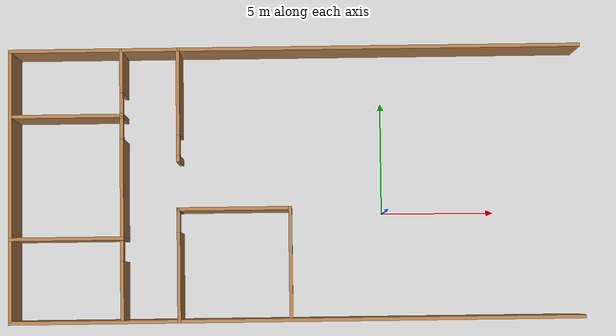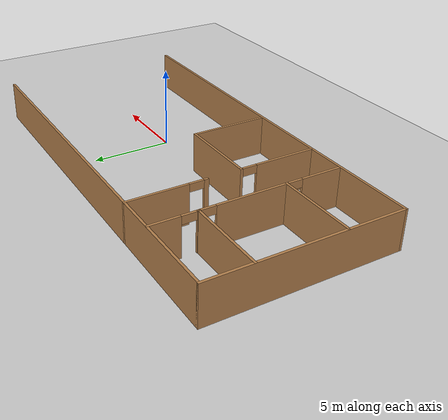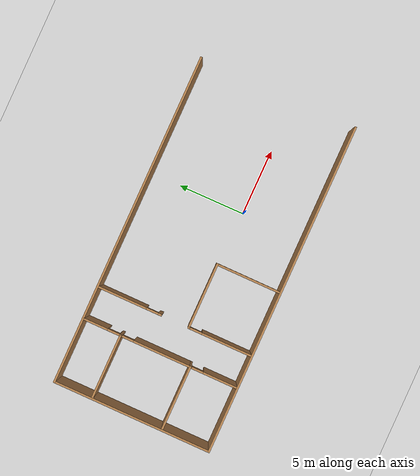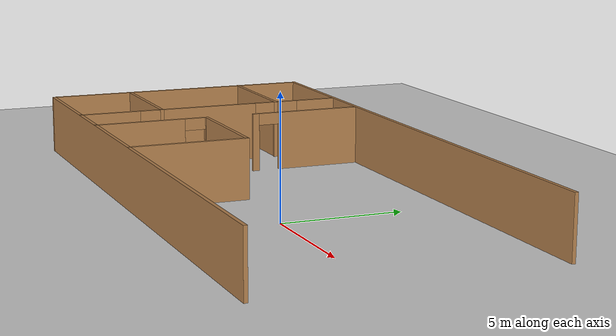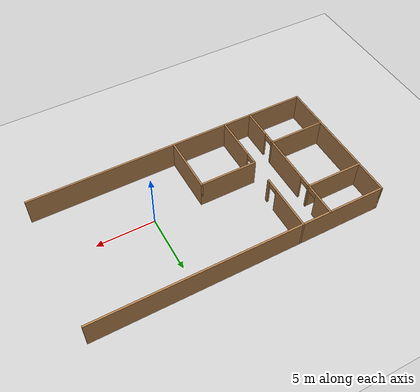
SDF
<sdf version="1.6">
 <world name="default">
  <model name="ground_plane">
   <static>1</static>
   <link name="link">
    <collision name="collision">
     <geometry><plane><normal>0 0 1</normal><size>100 100</size></plane></geometry>
     <surface>
      <contact><collide_bitmask>65535</collide_bitmask></contact>
      <friction><ode><mu>100</mu><mu2>50</mu2></ode></friction>
     </surface>
    </collision>
    <visual name="visual">
     <cast_shadows>0</cast_shadows>
     <geometry><plane><normal>0 0 1</normal><size>100 100</size></plane></geometry>
     <material>
      <script><uri>file://media/materials/scripts/gazebo.material</uri><name>Gazebo/Grey</name></script>
     </material>
    </visual>
   </link>
  </model>
  <model name="Building">
   <link name="Wall_19">
    <pose>0 5.9295 0 0 -0 0</pose>
    <visual name="Wall_19_Visual">
     <pose>0 0 1.25 0 -0 0</pose>
     <geometry><box><size>25 0.15 2.5</size></box></geometry>
     <material>
      <script><uri>file://media/materials/scripts/gazebo.material</uri><name>Gazebo/Wood</name></script>
      <ambient>1 1 1 1</ambient>
      <shader type="pixel"/>
      <diffuse>1 1 1 1</diffuse>
      <specular>0.2 0.2 0.2 1</specular>
      <emissive>0 0 0 1</emissive>
     </material>
     <meta><layer>0</layer></meta>
    </visual>
    <collision name="Wall_19_Collision">
     <pose>0 0 1.25 0 -0 0</pose>
     <geometry><box><size>25 0.15 2.5</size></box></geometry>
     <surface>
      <friction>
       <ode><mu>1</mu><mu2>1</mu2><fdir1>0 0 0</fdir1><slip1>0</slip1><slip2>0</slip2></ode>
       <torsional>
        <coefficient>1</coefficient>
        <patch_radius>0</patch_radius>
        <surface_radius>0</surface_radius>
        <use_patch_radius>1</use_patch_radius>
        <ode><slip>0</slip></ode>
       </torsional>
      </friction>
      <bounce><restitution_coefficient>0</restitution_coefficient><threshold>1e+06</threshold></bounce>
      <contact>
       <collide_without_contact>0</collide_without_contact>
       <collide_without_contact_bitmask>1</collide_without_contact_bitmask>
       <collide_bitmask>1</collide_bitmask>
       <ode>
        <soft_cfm>0</soft_cfm>
        <soft_erp>0.2</soft_erp>
        <kp>1e+13</kp>
        <kd>1</kd>
        <max_vel>0.01</max_vel>
        <min_depth>0</min_depth>
       </ode>
       <bullet>
        <split_impulse>1</split_impulse>
        <split_impulse_penetration_threshold>-0.01</split_impulse_penetration_threshold>
        <soft_cfm>0</soft_cfm>
        <soft_erp>0.2</soft_erp>
        <kp>1e+13</kp>
        <kd>1</kd>
       </bullet>
      </contact>
     </surface>
    </collision>
   </link>
   <link name="Wall_21">
    <pose>0 -5.9205 0 0 -0 3.14159</pose>
    <visual name="Wall_21_Visual">
     <pose>0 0 1.25 0 -0 0</pose>
     <geometry><box><size>25 0.15 2.5</size></box></geometry>
     <material>
      <script><uri>file://media/materials/scripts/gazebo.material</uri><name>Gazebo/Wood</name></script>
      <ambient>1 1 1 1</ambient>
      <shader type="pixel"/>
      <diffuse>1 1 1 1</diffuse>
      <specular>0.2 0.2 0.2 1</specular>
      <emissive>0 0 0 1</emissive>
     </material>
     <meta><layer>0</layer></meta>
    </visual>
    <collision name="Wall_21_Collision">
     <pose>0 0 1.25 0 -0 0</pose>
     <geometry><box><size>25 0.15 2.5</size></box></geometry>
     <surface>
      <friction>
       <ode><mu>1</mu><mu2>1</mu2><fdir1>0 0 0</fdir1><slip1>0</slip1><slip2>0</slip2></ode>
       <torsional>
        <coefficient>1</coefficient>
        <patch_radius>0</patch_radius>
        <surface_radius>0</surface_radius>
        <use_patch_radius>1</use_patch_radius>
        <ode><slip>0</slip></ode>
       </torsional>
      </friction>
      <bounce><restitution_coefficient>0</restitution_coefficient><threshold>1e+06</threshold></bounce>
      <contact>
       <collide_without_contact>0</collide_without_contact>
       <collide_without_contact_bitmask>1</collide_without_contact_bitmask>
       <collide_bitmask>1</collide_bitmask>
       <ode>
        <soft_cfm>0</soft_cfm>
        <soft_erp>0.2</soft_erp>
        <kp>1e+13</kp>
        <kd>1</kd>
        <max_vel>0.01</max_vel>
        <min_depth>0</min_depth>
       </ode>
       <bullet>
        <split_impulse>1</split_impulse>
        <split_impulse_penetration_threshold>-0.01</split_impulse_penetration_threshold>
        <soft_cfm>0</soft_cfm>
        <soft_erp>0.2</soft_erp>
        <kp>1e+13</kp>
        <kd>1</kd>
       </bullet>
      </contact>
     </surface>
    </collision>
   </link>
   <link name="Wall_22">
    <pose>-12.425 0.0045 0 0 -0 1.5708</pose>
    <visual name="Wall_22_Visual">
     <pose>0 0 1.25 0 -0 0</pose>
     <geometry><box><size>12 0.15 2.5</size></box></geometry>
     <material>
      <script><uri>file://media/materials/scripts/gazebo.material</uri><name>Gazebo/Wood</name></script>
      <ambient>1 1 1 1</ambient>
      <shader type="pixel"/>
      <diffuse>1 1 1 1</diffuse>
      <specular>0.2 0.2 0.2 1</specular>
      <emissive>0 0 0 1</emissive>
     </material>
     <meta><layer>0</layer></meta>
    </visual>
    <collision name="Wall_22_Collision">
     <pose>0 0 1.25 0 -0 0</pose>
     <geometry><box><size>12 0.15 2.5</size></box></geometry>
     <surface>
      <friction>
       <ode><mu>1</mu><mu2>1</mu2><fdir1>0 0 0</fdir1><slip1>0</slip1><slip2>0</slip2></ode>
       <torsional>
        <coefficient>1</coefficient>
        <patch_radius>0</patch_radius>
        <surface_radius>0</surface_radius>
        <use_patch_radius>1</use_patch_radius>
        <ode><slip>0</slip></ode>
       </torsional>
      </friction>
      <bounce><restitution_coefficient>0</restitution_coefficient><threshold>1e+06</threshold></bounce>
      <contact>
       <collide_without_contact>0</collide_without_contact>
       <collide_without_contact_bitmask>1</collide_without_contact_bitmask>
       <collide_bitmask>1</collide_bitmask>
       <ode>
        <soft_cfm>0</soft_cfm>
        <soft_erp>0.2</soft_erp>
        <kp>1e+13</kp>
        <kd>1</kd>
        <max_vel>0.01</max_vel>
        <min_depth>0</min_depth>
       </ode>
       <bullet>
        <split_impulse>1</split_impulse>
        <split_impulse_penetration_threshold>-0.01</split_impulse_penetration_threshold>
        <soft_cfm>0</soft_cfm>
        <soft_erp>0.2</soft_erp>
        <kp>1e+13</kp>
        <kd>1</kd>
       </bullet>
      </contact>
     </surface>
    </collision>
   </link>
   <link name="Wall_46">
    <pose>-9.99667 3.05607 0 0 -0 3.14159</pose>
    <visual name="Wall_46_Visual">
     <pose>0 0 1.25 0 -0 0</pose>
     <geometry><box><size>5 0.15 2.5</size></box></geometry>
     <material>
      <script><uri>file://media/materials/scripts/gazebo.material</uri><name>Gazebo/Wood</name></script>
      <ambient>1 1 1 1</ambient>
      <shader type="pixel"/>
      <diffuse>1 1 1 1</diffuse>
      <specular>0.2 0.2 0.2 1</specular>
      <emissive>0 0 0 1</emissive>
     </material>
     <meta><layer>0</layer></meta>
    </visual>
    <collision name="Wall_46_Collision">
     <pose>0 0 1.25 0 -0 0</pose>
     <geometry><box><size>5 0.15 2.5</size></box></geometry>
     <surface>
      <friction>
       <ode><mu>1</mu><mu2>1</mu2><fdir1>0 0 0</fdir1><slip1>0</slip1><slip2>0</slip2></ode>
       <torsional>
        <coefficient>1</coefficient>
        <patch_radius>0</patch_radius>
        <surface_radius>0</surface_radius>
        <use_patch_radius>1</use_patch_radius>
        <ode><slip>0</slip></ode>
       </torsional>
      </friction>
      <bounce><restitution_coefficient>0</restitution_coefficient><threshold>1e+06</threshold></bounce>
      <contact>
       <collide_without_contact>0</collide_without_contact>
       <collide_without_contact_bitmask>1</collide_without_contact_bitmask>
       <collide_bitmask>1</collide_bitmask>
       <ode>
        <soft_cfm>0</soft_cfm>
        <soft_erp>0.2</soft_erp>
        <kp>1e+13</kp>
        <kd>1</kd>
        <max_vel>0.01</max_vel>
        <min_depth>0</min_depth>
       </ode>
       <bullet>
        <split_impulse>1</split_impulse>
        <split_impulse_penetration_threshold>-0.01</split_impulse_penetration_threshold>
        <soft_cfm>0</soft_cfm>
        <soft_erp>0.2</soft_erp>
        <kp>1e+13</kp>
        <kd>1</kd>
       </bullet>
      </contact>
     </surface>
    </collision>
   </link>
   <link name="Wall_48">
    <pose>-7.57167 4.48107 0 0 -0 1.5708</pose>
    <visual name="Wall_48_Visual_2">
     <pose>-0.874567 0 2.25 0 -0 0</pose>
     <geometry><box><size>0.9 0.15 0.5</size></box></geometry>
     <material>
      <script><uri>file://media/materials/scripts/gazebo.material</uri><name>Gazebo/Wood</name></script>
      <ambient>1 1 1 1</ambient>
      <shader type="pixel"/>
      <diffuse>1 1 1 1</diffuse>
      <specular>0.2 0.2 0.2 1</specular>
      <emissive>0 0 0 1</emissive>
     </material>
     <meta><layer>0</layer></meta>
    </visual>
    <visual name="Wall_48_Visual_1">
     <pose>0.537716 0 1.25 0 -0 0</pose>
     <geometry><box><size>1.92457 0.15 2.5</size></box></geometry>
     <material>
      <script><uri>file://media/materials/scripts/gazebo.material</uri><name>Gazebo/Wood</name></script>
      <ambient>1 1 1 1</ambient>
      <shader type="pixel"/>
      <diffuse>1 1 1 1</diffuse>
      <specular>0.2 0.2 0.2 1</specular>
      <emissive>0 0 0 1</emissive>
     </material>
     <meta><layer>0</layer></meta>
    </visual>
    <visual name="Wall_48_Visual_0">
     <pose>-1.41228 0 1.25 0 -0 0</pose>
     <geometry><box><size>0.175433 0.15 2.5</size></box></geometry>
     <material>
      <script><uri>file://media/materials/scripts/gazebo.material</uri><name>Gazebo/Wood</name></script>
      <ambient>1 1 1 1</ambient>
      <shader type="pixel"/>
      <diffuse>1 1 1 1</diffuse>
      <specular>0.2 0.2 0.2 1</specular>
      <emissive>0 0 0 1</emissive>
     </material>
     <meta><layer>0</layer></meta>
    </visual>
    <collision name="Wall_48_Collision_2">
     <pose>-0.874567 0 2.25 0 -0 0</pose>
     <geometry><box><size>0.9 0.15 0.5</size></box></geometry>
     <surface>
      <friction>
       <ode><mu>1</mu><mu2>1</mu2><fdir1>0 0 0</fdir1><slip1>0</slip1><slip2>0</slip2></ode>
       <torsional>
        <coefficient>1</coefficient>
        <patch_radius>0</patch_radius>
        <surface_radius>0</surface_radius>
        <use_patch_radius>1</use_patch_radius>
        <ode><slip>0</slip></ode>
       </torsional>
      </friction>
      <bounce><restitution_coefficient>0</restitution_coefficient><threshold>1e+06</threshold></bounce>
      <contact>
       <collide_without_contact>0</collide_without_contact>
       <collide_without_contact_bitmask>1</collide_without_contact_bitmask>
       <collide_bitmask>1</collide_bitmask>
       <ode>
        <soft_cfm>0</soft_cfm>
        <soft_erp>0.2</soft_erp>
        <kp>1e+13</kp>
        <kd>1</kd>
        <max_vel>0.01</max_vel>
        <min_depth>0</min_depth>
       </ode>
       <bullet>
        <split_impulse>1</split_impulse>
        <split_impulse_penetration_threshold>-0.01</split_impulse_penetration_threshold>
        <soft_cfm>0</soft_cfm>
        <soft_erp>0.2</soft_erp>
        <kp>1e+13</kp>
        <kd>1</kd>
       </bullet>
      </contact>
     </surface>
    </collision>
    <collision name="Wall_48_Collision_1">
     <pose>0.537716 0 1.25 0 -0 0</pose>
     <geometry><box><size>1.92457 0.15 2.5</size></box></geometry>
     <surface>
      <friction>
       <ode><mu>1</mu><mu2>1</mu2><fdir1>0 0 0</fdir1><slip1>0</slip1><slip2>0</slip2></ode>
       <torsional>
        <coefficient>1</coefficient>
        <patch_radius>0</patch_radius>
        <surface_radius>0</surface_radius>
        <use_patch_radius>1</use_patch_radius>
        <ode><slip>0</slip></ode>
       </torsional>
      </friction>
      <bounce><restitution_coefficient>0</restitution_coefficient><threshold>1e+06</threshold></bounce>
      <contact>
       <collide_without_contact>0</collide_without_contact>
       <collide_without_contact_bitmask>1</collide_without_contact_bitmask>
       <collide_bitmask>1</collide_bitmask>
       <ode>
        <soft_cfm>0</soft_cfm>
        <soft_erp>0.2</soft_erp>
        <kp>1e+13</kp>
        <kd>1</kd>
        <max_vel>0.01</max_vel>
        <min_depth>0</min_depth>
       </ode>
       <bullet>
        <split_impulse>1</split_impulse>
        <split_impulse_penetration_threshold>-0.01</split_impulse_penetration_threshold>
        <soft_cfm>0</soft_cfm>
        <soft_erp>0.2</soft_erp>
        <kp>1e+13</kp>
        <kd>1</kd>
       </bullet>
      </contact>
     </surface>
    </collision>
    <collision name="Wall_48_Collision_0">
     <pose>-1.41228 0 1.25 0 -0 0</pose>
     <geometry><box><size>0.175433 0.15 2.5</size></box></geometry>
     <surface>
      <friction>
       <ode><mu>1</mu><mu2>1</mu2><fdir1>0 0 0</fdir1><slip1>0</slip1><slip2>0</slip2></ode>
       <torsional>
        <coefficient>1</coefficient>
        <patch_radius>0</patch_radius>
        <surface_radius>0</surface_radius>
        <use_patch_radius>1</use_patch_radius>
        <ode><slip>0</slip></ode>
       </torsional>
      </friction>
      <bounce><restitution_coefficient>0</restitution_coefficient><threshold>1e+06</threshold></bounce>
      <contact>
       <collide_without_contact>0</collide_without_contact>
       <collide_without_contact_bitmask>1</collide_without_contact_bitmask>
       <collide_bitmask>1</collide_bitmask>
       <ode>
        <soft_cfm>0</soft_cfm>
        <soft_erp>0.2</soft_erp>
        <kp>1e+13</kp>
        <kd>1</kd>
        <max_vel>0.01</max_vel>
        <min_depth>0</min_depth>
       </ode>
       <bullet>
        <split_impulse>1</split_impulse>
        <split_impulse_penetration_threshold>-0.01</split_impulse_penetration_threshold>
        <soft_cfm>0</soft_cfm>
        <soft_erp>0.2</soft_erp>
        <kp>1e+13</kp>
        <kd>1</kd>
       </bullet>
      </contact>
     </surface>
    </collision>
   </link>
   <link name="Wall_50">
    <pose>-9.99667 -2.29393 0 0 -0 0</pose>
    <visual name="Wall_50_Visual">
     <pose>0 0 1.25 0 -0 0</pose>
     <geometry><box><size>5 0.15 2.5</size></box></geometry>
     <material>
      <script><uri>file://media/materials/scripts/gazebo.material</uri><name>Gazebo/Wood</name></script>
      <ambient>1 1 1 1</ambient>
      <shader type="pixel"/>
      <diffuse>1 1 1 1</diffuse>
      <specular>0.2 0.2 0.2 1</specular>
      <emissive>0 0 0 1</emissive>
     </material>
     <meta><layer>0</layer></meta>
    </visual>
    <collision name="Wall_50_Collision">
     <pose>0 0 1.25 0 -0 0</pose>
     <geometry><box><size>5 0.15 2.5</size></box></geometry>
     <surface>
      <friction>
       <ode><mu>1</mu><mu2>1</mu2><fdir1>0 0 0</fdir1><slip1>0</slip1><slip2>0</slip2></ode>
       <torsional>
        <coefficient>1</coefficient>
        <patch_radius>0</patch_radius>
        <surface_radius>0</surface_radius>
        <use_patch_radius>1</use_patch_radius>
        <ode><slip>0</slip></ode>
       </torsional>
      </friction>
      <bounce><restitution_coefficient>0</restitution_coefficient><threshold>1e+06</threshold></bounce>
      <contact>
       <collide_without_contact>0</collide_without_contact>
       <collide_without_contact_bitmask>1</collide_without_contact_bitmask>
       <collide_bitmask>1</collide_bitmask>
       <ode>
        <soft_cfm>0</soft_cfm>
        <soft_erp>0.2</soft_erp>
        <kp>1e+13</kp>
        <kd>1</kd>
        <max_vel>0.01</max_vel>
        <min_depth>0</min_depth>
       </ode>
       <bullet>
        <split_impulse>1</split_impulse>
        <split_impulse_penetration_threshold>-0.01</split_impulse_penetration_threshold>
        <soft_cfm>0</soft_cfm>
        <soft_erp>0.2</soft_erp>
        <kp>1e+13</kp>
        <kd>1</kd>
       </bullet>
      </contact>
     </surface>
    </collision>
   </link>
   <link name="Wall_51">
    <pose>-7.57167 -4.09393 0 0 0 -1.5708</pose>
    <visual name="Wall_51_Visual_1">
     <pose>0.536564 0 1.25 0 -0 0</pose>
     <geometry><box><size>2.67687 0.15 2.5</size></box></geometry>
     <material>
      <script><uri>file://media/materials/scripts/gazebo.material</uri><name>Gazebo/Wood</name></script>
      <ambient>1 1 1 1</ambient>
      <shader type="pixel"/>
      <diffuse>1 1 1 1</diffuse>
      <specular>0.2 0.2 0.2 1</specular>
      <emissive>0 0 0 1</emissive>
     </material>
     <meta><layer>0</layer></meta>
    </visual>
    <visual name="Wall_51_Visual_0">
     <pose>-1.78844 0 1.25 0 -0 0</pose>
     <geometry><box><size>0.173129 0.15 2.5</size></box></geometry>
     <material>
      <script><uri>file://media/materials/scripts/gazebo.material</uri><name>Gazebo/Wood</name></script>
      <ambient>1 1 1 1</ambient>
      <shader type="pixel"/>
      <diffuse>1 1 1 1</diffuse>
      <specular>0.2 0.2 0.2 1</specular>
      <emissive>0 0 0 1</emissive>
     </material>
     <meta><layer>0</layer></meta>
    </visual>
    <visual name="Wall_51_Visual_2">
     <pose>-1.25187 0 2.25 0 -0 0</pose>
     <geometry><box><size>0.9 0.15 0.5</size></box></geometry>
     <material>
      <script><uri>file://media/materials/scripts/gazebo.material</uri><name>Gazebo/Wood</name></script>
      <ambient>1 1 1 1</ambient>
      <shader type="pixel"/>
      <diffuse>1 1 1 1</diffuse>
      <specular>0.2 0.2 0.2 1</specular>
      <emissive>0 0 0 1</emissive>
     </material>
     <meta><layer>0</layer></meta>
    </visual>
    <collision name="Wall_51_Collision_0">
     <pose>-1.78844 0 1.25 0 -0 0</pose>
     <geometry><box><size>0.173129 0.15 2.5</size></box></geometry>
     <surface>
      <friction>
       <ode><mu>1</mu><mu2>1</mu2><fdir1>0 0 0</fdir1><slip1>0</slip1><slip2>0</slip2></ode>
       <torsional>
        <coefficient>1</coefficient>
        <patch_radius>0</patch_radius>
        <surface_radius>0</surface_radius>
        <use_patch_radius>1</use_patch_radius>
        <ode><slip>0</slip></ode>
       </torsional>
      </friction>
      <bounce><restitution_coefficient>0</restitution_coefficient><threshold>1e+06</threshold></bounce>
      <contact>
       <collide_without_contact>0</collide_without_contact>
       <collide_without_contact_bitmask>1</collide_without_contact_bitmask>
       <collide_bitmask>1</collide_bitmask>
       <ode>
        <soft_cfm>0</soft_cfm>
        <soft_erp>0.2</soft_erp>
        <kp>1e+13</kp>
        <kd>1</kd>
        <max_vel>0.01</max_vel>
        <min_depth>0</min_depth>
       </ode>
       <bullet>
        <split_impulse>1</split_impulse>
        <split_impulse_penetration_threshold>-0.01</split_impulse_penetration_threshold>
        <soft_cfm>0</soft_cfm>
        <soft_erp>0.2</soft_erp>
        <kp>1e+13</kp>
        <kd>1</kd>
       </bullet>
      </contact>
     </surface>
    </collision>
    <collision name="Wall_51_Collision_2">
     <pose>-1.25187 0 2.25 0 -0 0</pose>
     <geometry><box><size>0.9 0.15 0.5</size></box></geometry>
     <surface>
      <friction>
       <ode><mu>1</mu><mu2>1</mu2><fdir1>0 0 0</fdir1><slip1>0</slip1><slip2>0</slip2></ode>
       <torsional>
        <coefficient>1</coefficient>
        <patch_radius>0</patch_radius>
        <surface_radius>0</surface_radius>
        <use_patch_radius>1</use_patch_radius>
        <ode><slip>0</slip></ode>
       </torsional>
      </friction>
      <bounce><restitution_coefficient>0</restitution_coefficient><threshold>1e+06</threshold></bounce>
      <contact>
       <collide_without_contact>0</collide_without_contact>
       <collide_without_contact_bitmask>1</collide_without_contact_bitmask>
       <collide_bitmask>1</collide_bitmask>
       <ode>
        <soft_cfm>0</soft_cfm>
        <soft_erp>0.2</soft_erp>
        <kp>1e+13</kp>
        <kd>1</kd>
        <max_vel>0.01</max_vel>
        <min_depth>0</min_depth>
       </ode>
       <bullet>
        <split_impulse>1</split_impulse>
        <split_impulse_penetration_threshold>-0.01</split_impulse_penetration_threshold>
        <soft_cfm>0</soft_cfm>
        <soft_erp>0.2</soft_erp>
        <kp>1e+13</kp>
        <kd>1</kd>
       </bullet>
      </contact>
     </surface>
    </collision>
    <collision name="Wall_51_Collision_1">
     <pose>0.536564 0 1.25 0 -0 0</pose>
     <geometry><box><size>2.67687 0.15 2.5</size></box></geometry>
     <surface>
      <friction>
       <ode><mu>1</mu><mu2>1</mu2><fdir1>0 0 0</fdir1><slip1>0</slip1><slip2>0</slip2></ode>
       <torsional>
        <coefficient>1</coefficient>
        <patch_radius>0</patch_radius>
        <surface_radius>0</surface_radius>
        <use_patch_radius>1</use_patch_radius>
        <ode><slip>0</slip></ode>
       </torsional>
      </friction>
      <bounce><restitution_coefficient>0</restitution_coefficient><threshold>1e+06</threshold></bounce>
      <contact>
       <collide_without_contact>0</collide_without_contact>
       <collide_without_contact_bitmask>1</collide_without_contact_bitmask>
       <collide_bitmask>1</collide_bitmask>
       <ode>
        <soft_cfm>0</soft_cfm>
        <soft_erp>0.2</soft_erp>
        <kp>1e+13</kp>
        <kd>1</kd>
        <max_vel>0.01</max_vel>
        <min_depth>0</min_depth>
       </ode>
       <bullet>
        <split_impulse>1</split_impulse>
        <split_impulse_penetration_threshold>-0.01</split_impulse_penetration_threshold>
        <soft_cfm>0</soft_cfm>
        <soft_erp>0.2</soft_erp>
        <kp>1e+13</kp>
        <kd>1</kd>
       </bullet>
      </contact>
     </surface>
    </collision>
   </link>
   <link name="Wall_53">
    <pose>-7.57167 0.381066 0 0 0 -1.5708</pose>
    <visual name="Wall_53_Visual_1">
     <pose>0.539283 0 1.25 0 -0 0</pose>
     <geometry><box><size>4.42143 0.15 2.5</size></box></geometry>
     <material>
      <script><uri>file://media/materials/scripts/gazebo.material</uri><name>Gazebo/Wood</name></script>
      <ambient>1 1 1 1</ambient>
      <shader type="pixel"/>
      <diffuse>1 1 1 1</diffuse>
      <specular>0.2 0.2 0.2 1</specular>
      <emissive>0 0 0 1</emissive>
     </material>
     <meta><layer>0</layer></meta>
    </visual>
    <visual name="Wall_53_Visual_0">
     <pose>-2.66072 0 1.25 0 -0 0</pose>
     <geometry><box><size>0.178567 0.15 2.5</size></box></geometry>
     <material>
      <script><uri>file://media/materials/scripts/gazebo.material</uri><name>Gazebo/Wood</name></script>
      <ambient>1 1 1 1</ambient>
      <shader type="pixel"/>
      <diffuse>1 1 1 1</diffuse>
      <specular>0.2 0.2 0.2 1</specular>
      <emissive>0 0 0 1</emissive>
     </material>
     <meta><layer>0</layer></meta>
    </visual>
    <visual name="Wall_53_Visual_2">
     <pose>-2.12143 0 2.25 0 -0 0</pose>
     <geometry><box><size>0.9 0.15 0.5</size></box></geometry>
     <material>
      <script><uri>file://media/materials/scripts/gazebo.material</uri><name>Gazebo/Wood</name></script>
      <ambient>1 1 1 1</ambient>
      <shader type="pixel"/>
      <diffuse>1 1 1 1</diffuse>
      <specular>0.2 0.2 0.2 1</specular>
      <emissive>0 0 0 1</emissive>
     </material>
     <meta><layer>0</layer></meta>
    </visual>
    <collision name="Wall_53_Collision_0">
     <pose>-2.66072 0 1.25 0 -0 0</pose>
     <geometry><box><size>0.178567 0.15 2.5</size></box></geometry>
     <surface>
      <friction>
       <ode><mu>1</mu><mu2>1</mu2><fdir1>0 0 0</fdir1><slip1>0</slip1><slip2>0</slip2></ode>
       <torsional>
        <coefficient>1</coefficient>
        <patch_radius>0</patch_radius>
        <surface_radius>0</surface_radius>
        <use_patch_radius>1</use_patch_radius>
        <ode><slip>0</slip></ode>
       </torsional>
      </friction>
      <bounce><restitution_coefficient>0</restitution_coefficient><threshold>1e+06</threshold></bounce>
      <contact>
       <collide_without_contact>0</collide_without_contact>
       <collide_without_contact_bitmask>1</collide_without_contact_bitmask>
       <collide_bitmask>1</collide_bitmask>
       <ode>
        <soft_cfm>0</soft_cfm>
        <soft_erp>0.2</soft_erp>
        <kp>1e+13</kp>
        <kd>1</kd>
        <max_vel>0.01</max_vel>
        <min_depth>0</min_depth>
       </ode>
       <bullet>
        <split_impulse>1</split_impulse>
        <split_impulse_penetration_threshold>-0.01</split_impulse_penetration_threshold>
        <soft_cfm>0</soft_cfm>
        <soft_erp>0.2</soft_erp>
        <kp>1e+13</kp>
        <kd>1</kd>
       </bullet>
      </contact>
     </surface>
    </collision>
    <collision name="Wall_53_Collision_2">
     <pose>-2.12143 0 2.25 0 -0 0</pose>
     <geometry><box><size>0.9 0.15 0.5</size></box></geometry>
     <surface>
      <friction>
       <ode><mu>1</mu><mu2>1</mu2><fdir1>0 0 0</fdir1><slip1>0</slip1><slip2>0</slip2></ode>
       <torsional>
        <coefficient>1</coefficient>
        <patch_radius>0</patch_radius>
        <surface_radius>0</surface_radius>
        <use_patch_radius>1</use_patch_radius>
        <ode><slip>0</slip></ode>
       </torsional>
      </friction>
      <bounce><restitution_coefficient>0</restitution_coefficient><threshold>1e+06</threshold></bounce>
      <contact>
       <collide_without_contact>0</collide_without_contact>
       <collide_without_contact_bitmask>1</collide_without_contact_bitmask>
       <collide_bitmask>1</collide_bitmask>
       <ode>
        <soft_cfm>0</soft_cfm>
        <soft_erp>0.2</soft_erp>
        <kp>1e+13</kp>
        <kd>1</kd>
        <max_vel>0.01</max_vel>
        <min_depth>0</min_depth>
       </ode>
       <bullet>
        <split_impulse>1</split_impulse>
        <split_impulse_penetration_threshold>-0.01</split_impulse_penetration_threshold>
        <soft_cfm>0</soft_cfm>
        <soft_erp>0.2</soft_erp>
        <kp>1e+13</kp>
        <kd>1</kd>
       </bullet>
      </contact>
     </surface>
    </collision>
    <collision name="Wall_53_Collision_1">
     <pose>0.539283 0 1.25 0 -0 0</pose>
     <geometry><box><size>4.42143 0.15 2.5</size></box></geometry>
     <surface>
      <friction>
       <ode><mu>1</mu><mu2>1</mu2><fdir1>0 0 0</fdir1><slip1>0</slip1><slip2>0</slip2></ode>
       <torsional>
        <coefficient>1</coefficient>
        <patch_radius>0</patch_radius>
        <surface_radius>0</surface_radius>
        <use_patch_radius>1</use_patch_radius>
        <ode><slip>0</slip></ode>
       </torsional>
      </friction>
      <bounce><restitution_coefficient>0</restitution_coefficient><threshold>1e+06</threshold></bounce>
      <contact>
       <collide_without_contact>0</collide_without_contact>
       <collide_without_contact_bitmask>1</collide_without_contact_bitmask>
       <collide_bitmask>1</collide_bitmask>
       <ode>
        <soft_cfm>0</soft_cfm>
        <soft_erp>0.2</soft_erp>
        <kp>1e+13</kp>
        <kd>1</kd>
        <max_vel>0.01</max_vel>
        <min_depth>0</min_depth>
       </ode>
       <bullet>
        <split_impulse>1</split_impulse>
        <split_impulse_penetration_threshold>-0.01</split_impulse_penetration_threshold>
        <soft_cfm>0</soft_cfm>
        <soft_erp>0.2</soft_erp>
        <kp>1e+13</kp>
        <kd>1</kd>
       </bullet>
      </contact>
     </surface>
    </collision>
   </link>
   <link name="Wall_58">
    <pose>-5.111 -3.4905 0 0 -0 1.5708</pose>
    <visual name="Wall_58_Visual_1">
     <pose>2.41137 0 1.25 0 -0 0</pose>
     <geometry><box><size>0.177258 0.15 2.5</size></box></geometry>
     <material>
      <script><uri>file://media/materials/scripts/gazebo.material</uri><name>Gazebo/Wood</name></script>
      <ambient>1 1 1 1</ambient>
      <shader type="pixel"/>
      <diffuse>1 1 1 1</diffuse>
      <specular>0.2 0.2 0.2 1</specular>
      <emissive>0 0 0 1</emissive>
     </material>
     <meta><layer>0</layer></meta>
    </visual>
    <visual name="Wall_58_Visual_0">
     <pose>-0.538629 0 1.25 0 -0 0</pose>
     <geometry><box><size>3.92274 0.15 2.5</size></box></geometry>
     <material>
      <script><uri>file://media/materials/scripts/gazebo.material</uri><name>Gazebo/Wood</name></script>
      <ambient>1 1 1 1</ambient>
      <shader type="pixel"/>
      <diffuse>1 1 1 1</diffuse>
      <specular>0.2 0.2 0.2 1</specular>
      <emissive>0 0 0 1</emissive>
     </material>
     <meta><layer>0</layer></meta>
    </visual>
    <visual name="Wall_58_Visual_2">
     <pose>1.87274 0 2.25 0 -0 0</pose>
     <geometry><box><size>0.9 0.15 0.5</size></box></geometry>
     <material>
      <script><uri>file://media/materials/scripts/gazebo.material</uri><name>Gazebo/Wood</name></script>
      <ambient>1 1 1 1</ambient>
      <shader type="pixel"/>
      <diffuse>1 1 1 1</diffuse>
      <specular>0.2 0.2 0.2 1</specular>
      <emissive>0 0 0 1</emissive>
     </material>
     <meta><layer>0</layer></meta>
    </visual>
    <collision name="Wall_58_Collision_1">
     <pose>2.41137 0 1.25 0 -0 0</pose>
     <geometry><box><size>0.177258 0.15 2.5</size></box></geometry>
     <surface>
      <friction>
       <ode><mu>1</mu><mu2>1</mu2><fdir1>0 0 0</fdir1><slip1>0</slip1><slip2>0</slip2></ode>
       <torsional>
        <coefficient>1</coefficient>
        <patch_radius>0</patch_radius>
        <surface_radius>0</surface_radius>
        <use_patch_radius>1</use_patch_radius>
        <ode><slip>0</slip></ode>
       </torsional>
      </friction>
      <bounce><restitution_coefficient>0</restitution_coefficient><threshold>1e+06</threshold></bounce>
      <contact>
       <collide_without_contact>0</collide_without_contact>
       <collide_without_contact_bitmask>1</collide_without_contact_bitmask>
       <collide_bitmask>1</collide_bitmask>
       <ode>
        <soft_cfm>0</soft_cfm>
        <soft_erp>0.2</soft_erp>
        <kp>1e+13</kp>
        <kd>1</kd>
        <max_vel>0.01</max_vel>
        <min_depth>0</min_depth>
       </ode>
       <bullet>
        <split_impulse>1</split_impulse>
        <split_impulse_penetration_threshold>-0.01</split_impulse_penetration_threshold>
        <soft_cfm>0</soft_cfm>
        <soft_erp>0.2</soft_erp>
        <kp>1e+13</kp>
        <kd>1</kd>
       </bullet>
      </contact>
     </surface>
    </collision>
    <collision name="Wall_58_Collision_2">
     <pose>1.87274 0 2.25 0 -0 0</pose>
     <geometry><box><size>0.9 0.15 0.5</size></box></geometry>
     <surface>
      <friction>
       <ode><mu>1</mu><mu2>1</mu2><fdir1>0 0 0</fdir1><slip1>0</slip1><slip2>0</slip2></ode>
       <torsional>
        <coefficient>1</coefficient>
        <patch_radius>0</patch_radius>
        <surface_radius>0</surface_radius>
        <use_patch_radius>1</use_patch_radius>
        <ode><slip>0</slip></ode>
       </torsional>
      </friction>
      <bounce><restitution_coefficient>0</restitution_coefficient><threshold>1e+06</threshold></bounce>
      <contact>
       <collide_without_contact>0</collide_without_contact>
       <collide_without_contact_bitmask>1</collide_without_contact_bitmask>
       <collide_bitmask>1</collide_bitmask>
       <ode>
        <soft_cfm>0</soft_cfm>
        <soft_erp>0.2</soft_erp>
        <kp>1e+13</kp>
        <kd>1</kd>
        <max_vel>0.01</max_vel>
        <min_depth>0</min_depth>
       </ode>
       <bullet>
        <split_impulse>1</split_impulse>
        <split_impulse_penetration_threshold>-0.01</split_impulse_penetration_threshold>
        <soft_cfm>0</soft_cfm>
        <soft_erp>0.2</soft_erp>
        <kp>1e+13</kp>
        <kd>1</kd>
       </bullet>
      </contact>
     </surface>
    </collision>
    <collision name="Wall_58_Collision_0">
     <pose>-0.538629 0 1.25 0 -0 0</pose>
     <geometry><box><size>3.92274 0.15 2.5</size></box></geometry>
     <surface>
      <friction>
       <ode><mu>1</mu><mu2>1</mu2><fdir1>0 0 0</fdir1><slip1>0</slip1><slip2>0</slip2></ode>
       <torsional>
        <coefficient>1</coefficient>
        <patch_radius>0</patch_radius>
        <surface_radius>0</surface_radius>
        <use_patch_radius>1</use_patch_radius>
        <ode><slip>0</slip></ode>
       </torsional>
      </friction>
      <bounce><restitution_coefficient>0</restitution_coefficient><threshold>1e+06</threshold></bounce>
      <contact>
       <collide_without_contact>0</collide_without_contact>
       <collide_without_contact_bitmask>1</collide_without_contact_bitmask>
       <collide_bitmask>1</collide_bitmask>
       <ode>
        <soft_cfm>0</soft_cfm>
        <soft_erp>0.2</soft_erp>
        <kp>1e+13</kp>
        <kd>1</kd>
        <max_vel>0.01</max_vel>
        <min_depth>0</min_depth>
       </ode>
       <bullet>
        <split_impulse>1</split_impulse>
        <split_impulse_penetration_threshold>-0.01</split_impulse_penetration_threshold>
        <soft_cfm>0</soft_cfm>
        <soft_erp>0.2</soft_erp>
        <kp>1e+13</kp>
        <kd>1</kd>
       </bullet>
      </contact>
     </surface>
    </collision>
   </link>
   <link name="Wall_59">
    <pose>-2.686 -1.0655 0 0 -0 0</pose>
    <visual name="Wall_59_Visual">
     <pose>0 0 1.25 0 -0 0</pose>
     <geometry><box><size>5 0.15 2.5</size></box></geometry>
     <material>
      <script><uri>file://media/materials/scripts/gazebo.material</uri><name>Gazebo/Wood</name></script>
      <ambient>1 1 1 1</ambient>
      <shader type="pixel"/>
      <diffuse>1 1 1 1</diffuse>
      <specular>0.2 0.2 0.2 1</specular>
      <emissive>0 0 0 1</emissive>
     </material>
     <meta><layer>0</layer></meta>
    </visual>
    <collision name="Wall_59_Collision">
     <pose>0 0 1.25 0 -0 0</pose>
     <geometry><box><size>5 0.15 2.5</size></box></geometry>
     <surface>
      <friction>
       <ode><mu>1</mu><mu2>1</mu2><fdir1>0 0 0</fdir1><slip1>0</slip1><slip2>0</slip2></ode>
       <torsional>
        <coefficient>1</coefficient>
        <patch_radius>0</patch_radius>
        <surface_radius>0</surface_radius>
        <use_patch_radius>1</use_patch_radius>
        <ode><slip>0</slip></ode>
       </torsional>
      </friction>
      <bounce><restitution_coefficient>0</restitution_coefficient><threshold>1e+06</threshold></bounce>
      <contact>
       <collide_without_contact>0</collide_without_contact>
       <collide_without_contact_bitmask>1</collide_without_contact_bitmask>
       <collide_bitmask>1</collide_bitmask>
       <ode>
        <soft_cfm>0</soft_cfm>
        <soft_erp>0.2</soft_erp>
        <kp>1e+13</kp>
        <kd>1</kd>
        <max_vel>0.01</max_vel>
        <min_depth>0</min_depth>
       </ode>
       <bullet>
        <split_impulse>1</split_impulse>
        <split_impulse_penetration_threshold>-0.01</split_impulse_penetration_threshold>
        <soft_cfm>0</soft_cfm>
        <soft_erp>0.2</soft_erp>
        <kp>1e+13</kp>
        <kd>1</kd>
       </bullet>
      </contact>
     </surface>
    </collision>
   </link>
   <link name="Wall_60">
    <pose>-0.261 -3.4905 0 0 0 -1.5708</pose>
    <visual name="Wall_60_Visual">
     <pose>0 0 1.25 0 -0 0</pose>
     <geometry><box><size>5 0.15 2.5</size></box></geometry>
     <material>
      <script><uri>file://media/materials/scripts/gazebo.material</uri><name>Gazebo/Wood</name></script>
      <ambient>1 1 1 1</ambient>
      <shader type="pixel"/>
      <diffuse>1 1 1 1</diffuse>
      <specular>0.2 0.2 0.2 1</specular>
      <emissive>0 0 0 1</emissive>
     </material>
     <meta><layer>0</layer></meta>
    </visual>
    <collision name="Wall_60_Collision">
     <pose>0 0 1.25 0 -0 0</pose>
     <geometry><box><size>5 0.15 2.5</size></box></geometry>
     <surface>
      <friction>
       <ode><mu>1</mu><mu2>1</mu2><fdir1>0 0 0</fdir1><slip1>0</slip1><slip2>0</slip2></ode>
       <torsional>
        <coefficient>1</coefficient>
        <patch_radius>0</patch_radius>
        <surface_radius>0</surface_radius>
        <use_patch_radius>1</use_patch_radius>
        <ode><slip>0</slip></ode>
       </torsional>
      </friction>
      <bounce><restitution_coefficient>0</restitution_coefficient><threshold>1e+06</threshold></bounce>
      <contact>
       <collide_without_contact>0</collide_without_contact>
       <collide_without_contact_bitmask>1</collide_without_contact_bitmask>
       <collide_bitmask>1</collide_bitmask>
       <ode>
        <soft_cfm>0</soft_cfm>
        <soft_erp>0.2</soft_erp>
        <kp>1e+13</kp>
        <kd>1</kd>
        <max_vel>0.01</max_vel>
        <min_depth>0</min_depth>
       </ode>
       <bullet>
        <split_impulse>1</split_impulse>
        <split_impulse_penetration_threshold>-0.01</split_impulse_penetration_threshold>
        <soft_cfm>0</soft_cfm>
        <soft_erp>0.2</soft_erp>
        <kp>1e+13</kp>
        <kd>1</kd>
       </bullet>
      </contact>
     </surface>
    </collision>
   </link>
   <link name="Wall_64">
    <pose>-5.111 3.5045 0 0 0 -1.5708</pose>
    <visual name="Wall_64_Visual_0">
     <pose>-0.592917 0 1.25 0 -0 0</pose>
     <geometry><box><size>3.81417 0.15 2.5</size></box></geometry>
     <material>
      <script><uri>file://media/materials/scripts/gazebo.material</uri><name>Gazebo/Wood</name></script>
      <ambient>1 1 1 1</ambient>
      <shader type="pixel"/>
      <diffuse>1 1 1 1</diffuse>
      <specular>0.2 0.2 0.2 1</specular>
      <emissive>0 0 0 1</emissive>
     </material>
     <meta><layer>0</layer></meta>
    </visual>
    <visual name="Wall_64_Visual_1">
     <pose>2.35708 0 1.25 0 -0 0</pose>
     <geometry><box><size>0.285834 0.15 2.5</size></box></geometry>
     <material>
      <script><uri>file://media/materials/scripts/gazebo.material</uri><name>Gazebo/Wood</name></script>
      <ambient>1 1 1 1</ambient>
      <shader type="pixel"/>
      <diffuse>1 1 1 1</diffuse>
      <specular>0.2 0.2 0.2 1</specular>
      <emissive>0 0 0 1</emissive>
     </material>
     <meta><layer>0</layer></meta>
    </visual>
    <visual name="Wall_64_Visual_2">
     <pose>1.76417 0 2.25 0 -0 0</pose>
     <geometry><box><size>0.9 0.15 0.5</size></box></geometry>
     <material>
      <script><uri>file://media/materials/scripts/gazebo.material</uri><name>Gazebo/Wood</name></script>
      <ambient>1 1 1 1</ambient>
      <shader type="pixel"/>
      <diffuse>1 1 1 1</diffuse>
      <specular>0.2 0.2 0.2 1</specular>
      <emissive>0 0 0 1</emissive>
     </material>
     <meta><layer>0</layer></meta>
    </visual>
    <collision name="Wall_64_Collision_0">
     <pose>-0.592917 0 1.25 0 -0 0</pose>
     <geometry><box><size>3.81417 0.15 2.5</size></box></geometry>
     <surface>
      <friction>
       <ode><mu>1</mu><mu2>1</mu2><fdir1>0 0 0</fdir1><slip1>0</slip1><slip2>0</slip2></ode>
       <torsional>
        <coefficient>1</coefficient>
        <patch_radius>0</patch_radius>
        <surface_radius>0</surface_radius>
        <use_patch_radius>1</use_patch_radius>
        <ode><slip>0</slip></ode>
       </torsional>
      </friction>
      <bounce><restitution_coefficient>0</restitution_coefficient><threshold>1e+06</threshold></bounce>
      <contact>
       <collide_without_contact>0</collide_without_contact>
       <collide_without_contact_bitmask>1</collide_without_contact_bitmask>
       <collide_bitmask>1</collide_bitmask>
       <ode>
        <soft_cfm>0</soft_cfm>
        <soft_erp>0.2</soft_erp>
        <kp>1e+13</kp>
        <kd>1</kd>
        <max_vel>0.01</max_vel>
        <min_depth>0</min_depth>
       </ode>
       <bullet>
        <split_impulse>1</split_impulse>
        <split_impulse_penetration_threshold>-0.01</split_impulse_penetration_threshold>
        <soft_cfm>0</soft_cfm>
        <soft_erp>0.2</soft_erp>
        <kp>1e+13</kp>
        <kd>1</kd>
       </bullet>
      </contact>
     </surface>
    </collision>
    <collision name="Wall_64_Collision_2">
     <pose>1.76417 0 2.25 0 -0 0</pose>
     <geometry><box><size>0.9 0.15 0.5</size></box></geometry>
     <surface>
      <friction>
       <ode><mu>1</mu><mu2>1</mu2><fdir1>0 0 0</fdir1><slip1>0</slip1><slip2>0</slip2></ode>
       <torsional>
        <coefficient>1</coefficient>
        <patch_radius>0</patch_radius>
        <surface_radius>0</surface_radius>
        <use_patch_radius>1</use_patch_radius>
        <ode><slip>0</slip></ode>
       </torsional>
      </friction>
      <bounce><restitution_coefficient>0</restitution_coefficient><threshold>1e+06</threshold></bounce>
      <contact>
       <collide_without_contact>0</collide_without_contact>
       <collide_without_contact_bitmask>1</collide_without_contact_bitmask>
       <collide_bitmask>1</collide_bitmask>
       <ode>
        <soft_cfm>0</soft_cfm>
        <soft_erp>0.2</soft_erp>
        <kp>1e+13</kp>
        <kd>1</kd>
        <max_vel>0.01</max_vel>
        <min_depth>0</min_depth>
       </ode>
       <bullet>
        <split_impulse>1</split_impulse>
        <split_impulse_penetration_threshold>-0.01</split_impulse_penetration_threshold>
        <soft_cfm>0</soft_cfm>
        <soft_erp>0.2</soft_erp>
        <kp>1e+13</kp>
        <kd>1</kd>
       </bullet>
      </contact>
     </surface>
    </collision>
    <collision name="Wall_64_Collision_1">
     <pose>2.35708 0 1.25 0 -0 0</pose>
     <geometry><box><size>0.285834 0.15 2.5</size></box></geometry>
     <surface>
      <friction>
       <ode><mu>1</mu><mu2>1</mu2><fdir1>0 0 0</fdir1><slip1>0</slip1><slip2>0</slip2></ode>
       <torsional>
        <coefficient>1</coefficient>
        <patch_radius>0</patch_radius>
        <surface_radius>0</surface_radius>
        <use_patch_radius>1</use_patch_radius>
        <ode><slip>0</slip></ode>
       </torsional>
      </friction>
      <bounce><restitution_coefficient>0</restitution_coefficient><threshold>1e+06</threshold></bounce>
      <contact>
       <collide_without_contact>0</collide_without_contact>
       <collide_without_contact_bitmask>1</collide_without_contact_bitmask>
       <collide_bitmask>1</collide_bitmask>
       <ode>
        <soft_cfm>0</soft_cfm>
        <soft_erp>0.2</soft_erp>
        <kp>1e+13</kp>
        <kd>1</kd>
        <max_vel>0.01</max_vel>
        <min_depth>0</min_depth>
       </ode>
       <bullet>
        <split_impulse>1</split_impulse>
        <split_impulse_penetration_threshold>-0.01</split_impulse_penetration_threshold>
        <soft_cfm>0</soft_cfm>
        <soft_erp>0.2</soft_erp>
        <kp>1e+13</kp>
        <kd>1</kd>
       </bullet>
      </contact>
     </surface>
    </collision>
   </link>
   <static>1</static>
   <pose>-3.85028 1.2942 0 0 -0 0</pose>
  </model>
 </world>
</sdf>
